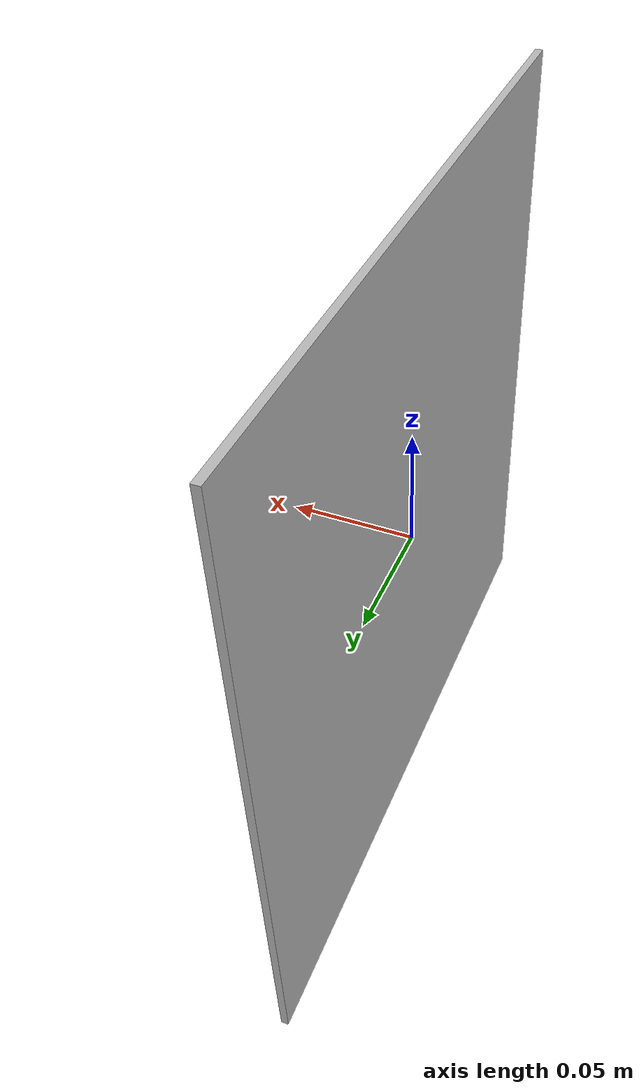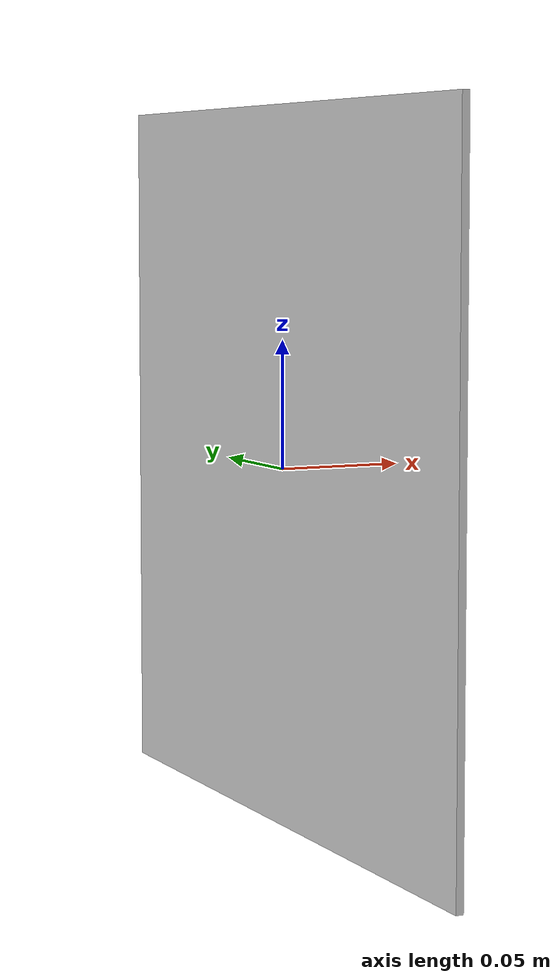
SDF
<?xml version="1.0"?>
<sdf version="1.6">
  <model name="qr_teknoloji">
    <static>true</static>
    <link name="link">
      <collision name="col">
        <geometry><box><size>0.003 0.28 0.28</size></box></geometry>
      </collision>
      <visual name="vis">
        <geometry><box><size>0.003 0.28 0.28</size></box></geometry>
        <material>
          <script>
            <uri>model://qr_teknoloji/materials/scripts</uri>
            <uri>model://qr_teknoloji/materials/textures</uri>
            <name>QR_TEKNOLOJI</name>
          </script>
        </material>
      </visual>
    </link>
  </model>
</sdf>
